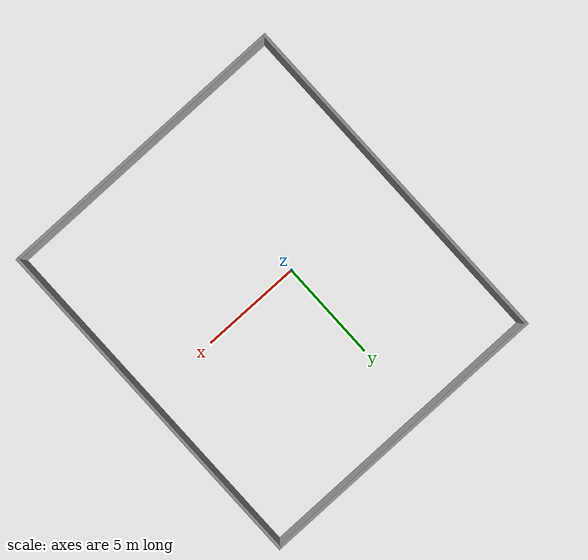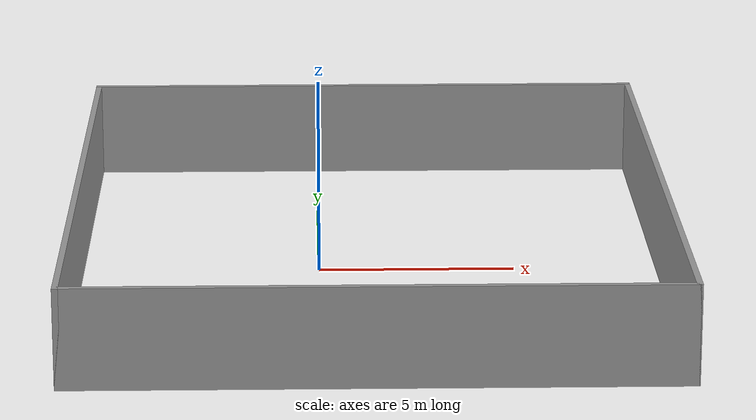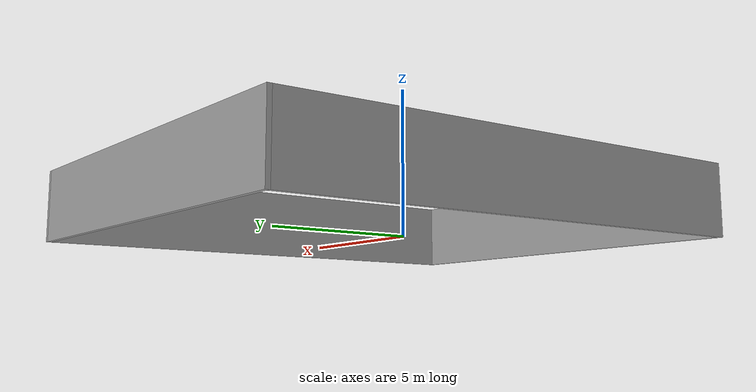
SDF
<?xml version='1.0'?>
<sdf version='1.7'>
  <model name='lab_in_building'>
    <pose>1.3024 0.133955 0 0 -0 0</pose>
    <link name='Wall_10'>
      <collision name='Wall_10_Collision'>
        <geometry>
          <box>
            <size>17.5 0.15 2.5</size>
          </box>
        </geometry>
        <pose>0 0 1.25 0 -0 0</pose>
      </collision>
      <visual name='Wall_10_Visual'>
        <pose>0 0 1.25 0 -0 0</pose>
        <geometry>
          <box>
            <size>17.5 0.15 2.5</size>
          </box>
        </geometry>
        <material>
          <script>
            <uri>file://media/materials/scripts/gazebo.material</uri>
            <name>Gazebo/Grey</name>
          </script>
          <ambient>1 1 1 1</ambient>
        </material>
        <meta>
          <layer>0</layer>
        </meta>
      </visual>
      <pose>7.425 -0 0 0 -0 1.5708</pose>
    </link>
    <link name='Wall_11'>
      <collision name='Wall_11_Collision'>
        <geometry>
          <box>
            <size>15 0.15 2.5</size>
          </box>
        </geometry>
        <pose>0 0 1.25 0 -0 0</pose>
      </collision>
      <visual name='Wall_11_Visual'>
        <pose>0 0 1.25 0 -0 0</pose>
        <geometry>
          <box>
            <size>15 0.15 2.5</size>
          </box>
        </geometry>
        <material>
          <script>
            <uri>file://media/materials/scripts/gazebo.material</uri>
            <name>Gazebo/Grey</name>
          </script>
          <ambient>1 1 1 1</ambient>
        </material>
        <meta>
          <layer>0</layer>
        </meta>
      </visual>
      <pose>0 8.675 0 0 -0 3.14159</pose>
    </link>
    <link name='Wall_8'>
      <collision name='Wall_8_Collision'>
        <geometry>
          <box>
            <size>17.5 0.15 2.5</size>
          </box>
        </geometry>
        <pose>0 0 1.25 0 -0 0</pose>
      </collision>
      <visual name='Wall_8_Visual'>
        <pose>0 0 1.25 0 -0 0</pose>
        <geometry>
          <box>
            <size>17.5 0.15 2.5</size>
          </box>
        </geometry>
        <material>
          <script>
            <uri>file://media/materials/scripts/gazebo.material</uri>
            <name>Gazebo/Grey</name>
          </script>
          <ambient>1 1 1 1</ambient>
        </material>
        <meta>
          <layer>0</layer>
        </meta>
      </visual>
      <pose>-7.425 -0 0 0 -0 -1.5708</pose>
    </link>
    <link name='Wall_9'>
      <collision name='Wall_9_Collision'>
        <geometry>
          <box>
            <size>15 0.15 2.5</size>
          </box>
        </geometry>
        <pose>0 0 1.25 0 -0 0</pose>
      </collision>
      <visual name='Wall_9_Visual'>
        <pose>0 0 1.25 0 -0 0</pose>
        <geometry>
          <box>
            <size>15 0.15 2.5</size>
          </box>
        </geometry>
        <material>
          <script>
            <uri>file://media/materials/scripts/gazebo.material</uri>
            <name>Gazebo/Grey</name>
          </script>
          <ambient>1 1 1 1</ambient>
        </material>
        <meta>
          <layer>0</layer>
        </meta>
      </visual>
      <pose>0 -8.675 0 0 -0 0</pose>
    </link>
    <static>1</static>
  </model>
</sdf>
